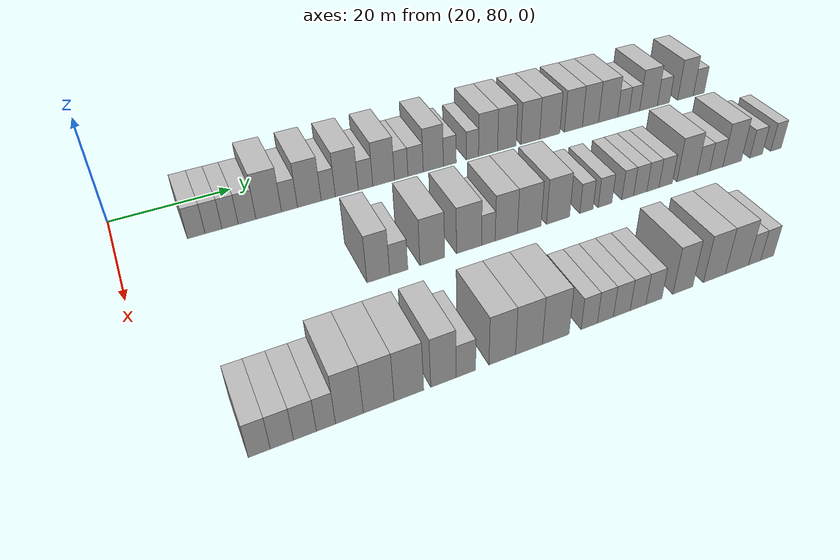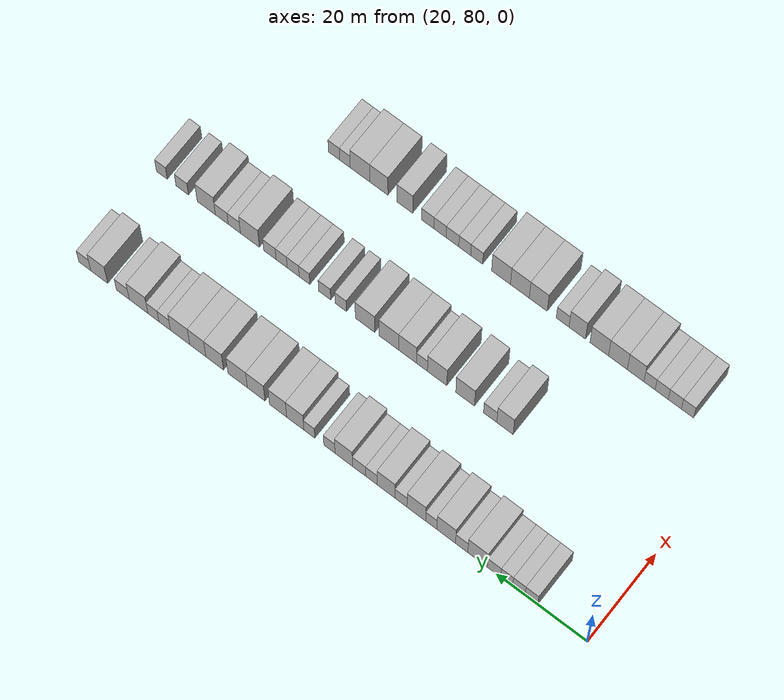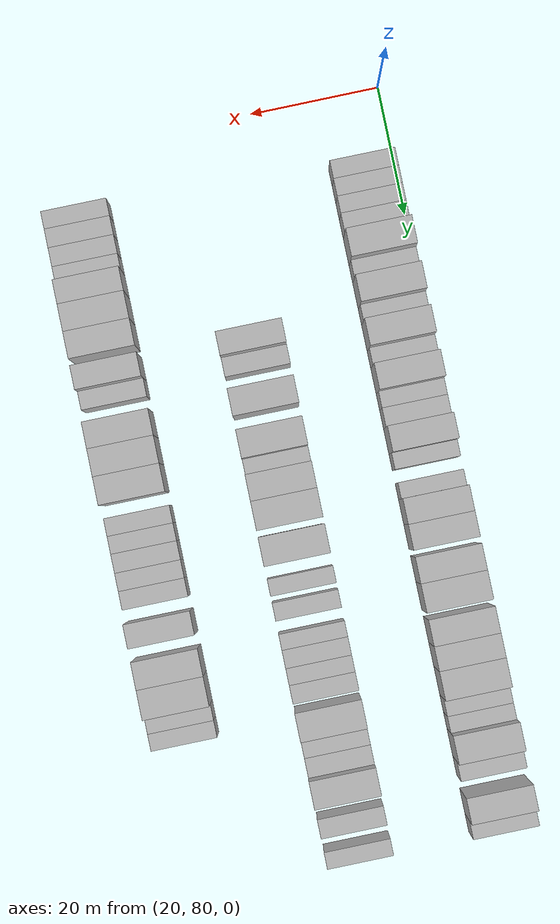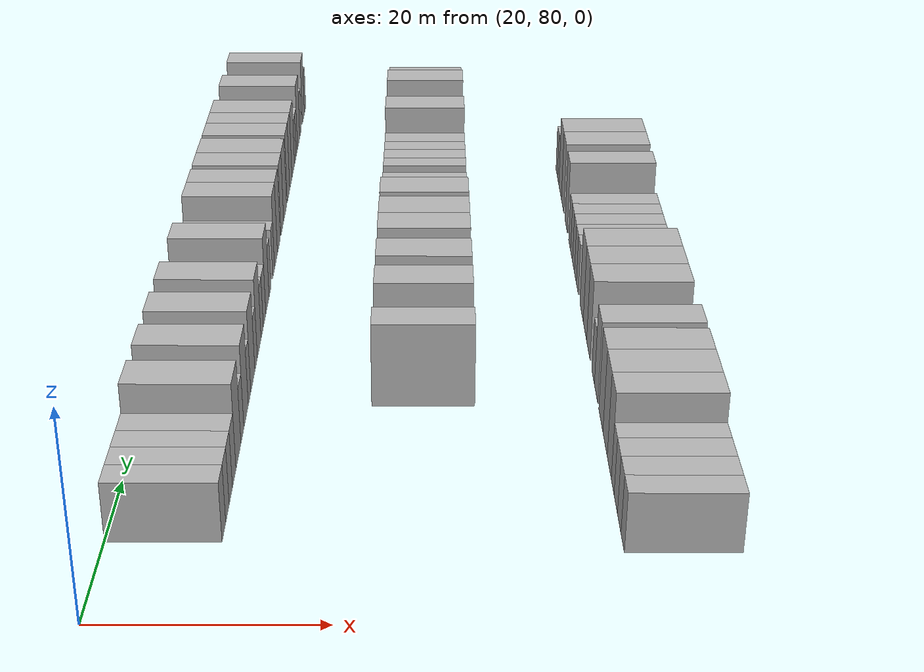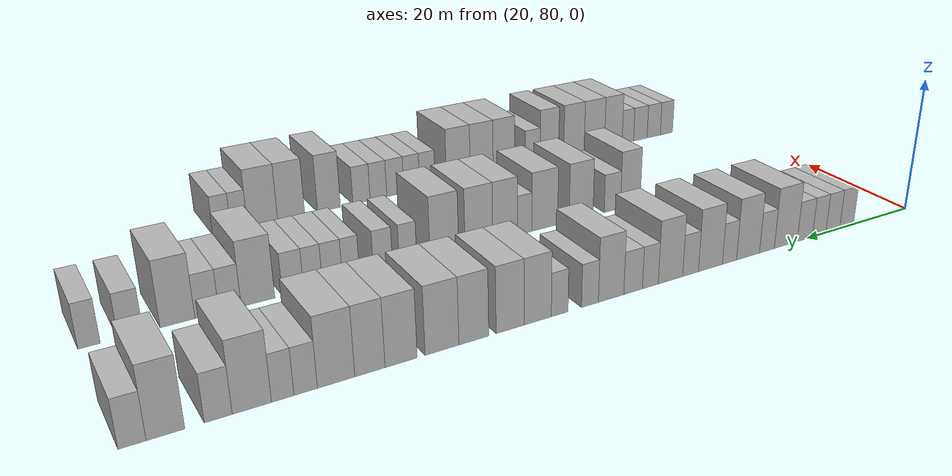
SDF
<sdf version="1.6">
 <world name="default">
  <model name="building_121">
   <static>1</static>
   <pose>25.0000 92.2509 0 0.000000 0.000000 0.000000</pose>
   <link name="link">
    <pose>0 0 3.00 0 0 0</pose>
    <collision name="collision"><geometry><box><size>10.0000 2.7826 6.0000</size></box></geometry></collision>
    <visual name="visual">
     <cast_shadows>0</cast_shadows>
     <geometry><box><size>10.0000 2.7826 6.0000</size></box></geometry>
     <material>
      <script>
       <uri>model://HANNAS_wall/materials/scripts</uri>
       <uri>model://HANNAS_wall/materials/textures</uri>
       <name>vrc/HANNAS_wall</name>
      </script>
     </material>
    </visual>
   </link>
  </model>
  <model name="building_122">
   <static>1</static>
   <pose>25.0000 94.9966 0 0.000000 0.000000 0.000000</pose>
   <link name="link">
    <pose>0 0 3.00 0 0 0</pose>
    <collision name="collision"><geometry><box><size>10.0000 2.7088 6.0000</size></box></geometry></collision>
    <visual name="visual">
     <cast_shadows>0</cast_shadows>
     <geometry><box><size>10.0000 2.7088 6.0000</size></box></geometry>
     <material>
      <script>
       <uri>model://HANNAS_wall/materials/scripts</uri>
       <uri>model://HANNAS_wall/materials/textures</uri>
       <name>vrc/HANNAS_wall</name>
      </script>
     </material>
    </visual>
   </link>
  </model>
  <model name="building_123">
   <static>1</static>
   <pose>25.0000 97.6648 0 0.000000 0.000000 0.000000</pose>
   <link name="link">
    <pose>0 0 3.00 0 0 0</pose>
    <collision name="collision"><geometry><box><size>10.0000 2.6275 6.0000</size></box></geometry></collision>
    <visual name="visual">
     <cast_shadows>0</cast_shadows>
     <geometry><box><size>10.0000 2.6275 6.0000</size></box></geometry>
     <material>
      <script>
       <uri>model://HANNAS_wall/materials/scripts</uri>
       <uri>model://HANNAS_wall/materials/textures</uri>
       <name>vrc/HANNAS_wall</name>
      </script>
     </material>
    </visual>
   </link>
  </model>
  <model name="building_124">
   <static>1</static>
   <pose>25.0000 100.4371 0 0.000000 0.000000 0.000000</pose>
   <link name="link">
    <pose>0 0 3.00 0 0 0</pose>
    <collision name="collision"><geometry><box><size>10.0000 2.9172 6.0000</size></box></geometry></collision>
    <visual name="visual">
     <cast_shadows>0</cast_shadows>
     <geometry><box><size>10.0000 2.9172 6.0000</size></box></geometry>
     <material>
      <script>
       <uri>model://HANNAS_wall/materials/scripts</uri>
       <uri>model://HANNAS_wall/materials/textures</uri>
       <name>vrc/HANNAS_wall</name>
      </script>
     </material>
    </visual>
   </link>
  </model>
  <model name="building_125">
   <static>1</static>
   <pose>25.0000 104.0445 0 0.000000 0.000000 0.000000</pose>
   <link name="link">
    <pose>0 0 4.50 0 0 0</pose>
    <collision name="collision"><geometry><box><size>10.0000 4.2976 9.0000</size></box></geometry></collision>
    <visual name="visual">
     <cast_shadows>0</cast_shadows>
     <geometry><box><size>10.0000 4.2976 9.0000</size></box></geometry>
     <material>
      <script>
       <uri>model://HANNAS_wall/materials/scripts</uri>
       <uri>model://HANNAS_wall/materials/textures</uri>
       <name>vrc/HANNAS_wall</name>
      </script>
     </material>
    </visual>
   </link>
  </model>
  <model name="building_126">
   <static>1</static>
   <pose>25.0000 107.5509 0 0.000000 0.000000 0.000000</pose>
   <link name="link">
    <pose>0 0 3.00 0 0 0</pose>
    <collision name="collision"><geometry><box><size>10.0000 2.7152 6.0000</size></box></geometry></collision>
    <visual name="visual">
     <cast_shadows>0</cast_shadows>
     <geometry><box><size>10.0000 2.7152 6.0000</size></box></geometry>
     <material>
      <script>
       <uri>model://HANNAS_wall/materials/scripts</uri>
       <uri>model://HANNAS_wall/materials/textures</uri>
       <name>vrc/HANNAS_wall</name>
      </script>
     </material>
    </visual>
   </link>
  </model>
  <model name="building_127">
   <static>1</static>
   <pose>25.0000 110.9674 0 0.000000 0.000000 0.000000</pose>
   <link name="link">
    <pose>0 0 4.50 0 0 0</pose>
    <collision name="collision"><geometry><box><size>10.0000 4.1178 9.0000</size></box></geometry></collision>
    <visual name="visual">
     <cast_shadows>0</cast_shadows>
     <geometry><box><size>10.0000 4.1178 9.0000</size></box></geometry>
     <material>
      <script>
       <uri>model://HANNAS_wall/materials/scripts</uri>
       <uri>model://HANNAS_wall/materials/textures</uri>
       <name>vrc/HANNAS_wall</name>
      </script>
     </material>
    </visual>
   </link>
  </model>
  <model name="building_128">
   <static>1</static>
   <pose>25.0000 114.2738 0 0.000000 0.000000 0.000000</pose>
   <link name="link">
    <pose>0 0 3.00 0 0 0</pose>
    <collision name="collision"><geometry><box><size>10.0000 2.4950 6.0000</size></box></geometry></collision>
    <visual name="visual">
     <cast_shadows>0</cast_shadows>
     <geometry><box><size>10.0000 2.4950 6.0000</size></box></geometry>
     <material>
      <script>
       <uri>model://HANNAS_wall/materials/scripts</uri>
       <uri>model://HANNAS_wall/materials/textures</uri>
       <name>vrc/HANNAS_wall</name>
      </script>
     </material>
    </visual>
   </link>
  </model>
  <model name="building_129">
   <static>1</static>
   <pose>25.0000 117.5866 0 0.000000 0.000000 0.000000</pose>
   <link name="link">
    <pose>0 0 4.50 0 0 0</pose>
    <collision name="collision"><geometry><box><size>10.0000 4.1306 9.0000</size></box></geometry></collision>
    <visual name="visual">
     <cast_shadows>0</cast_shadows>
     <geometry><box><size>10.0000 4.1306 9.0000</size></box></geometry>
     <material>
      <script>
       <uri>model://HANNAS_wall/materials/scripts</uri>
       <uri>model://HANNAS_wall/materials/textures</uri>
       <name>vrc/HANNAS_wall</name>
      </script>
     </material>
    </visual>
   </link>
  </model>
  <model name="building_130">
   <static>1</static>
   <pose>25.0000 120.9733 0 0.000000 0.000000 0.000000</pose>
   <link name="link">
    <pose>0 0 3.00 0 0 0</pose>
    <collision name="collision"><geometry><box><size>10.0000 2.6429 6.0000</size></box></geometry></collision>
    <visual name="visual">
     <cast_shadows>0</cast_shadows>
     <geometry><box><size>10.0000 2.6429 6.0000</size></box></geometry>
     <material>
      <script>
       <uri>model://HANNAS_wall/materials/scripts</uri>
       <uri>model://HANNAS_wall/materials/textures</uri>
       <name>vrc/HANNAS_wall</name>
      </script>
     </material>
    </visual>
   </link>
  </model>
  <model name="building_131">
   <static>1</static>
   <pose>25.0000 124.3007 0 0.000000 0.000000 0.000000</pose>
   <link name="link">
    <pose>0 0 4.50 0 0 0</pose>
    <collision name="collision"><geometry><box><size>10.0000 4.0118 9.0000</size></box></geometry></collision>
    <visual name="visual">
     <cast_shadows>0</cast_shadows>
     <geometry><box><size>10.0000 4.0118 9.0000</size></box></geometry>
     <material>
      <script>
       <uri>model://HANNAS_wall/materials/scripts</uri>
       <uri>model://HANNAS_wall/materials/textures</uri>
       <name>vrc/HANNAS_wall</name>
      </script>
     </material>
    </visual>
   </link>
  </model>
  <model name="building_132">
   <static>1</static>
   <pose>25.0000 127.5806 0 0.000000 0.000000 0.000000</pose>
   <link name="link">
    <pose>0 0 3.00 0 0 0</pose>
    <collision name="collision"><geometry><box><size>10.0000 2.5478 6.0000</size></box></geometry></collision>
    <visual name="visual">
     <cast_shadows>0</cast_shadows>
     <geometry><box><size>10.0000 2.5478 6.0000</size></box></geometry>
     <material>
      <script>
       <uri>model://HANNAS_wall/materials/scripts</uri>
       <uri>model://HANNAS_wall/materials/textures</uri>
       <name>vrc/HANNAS_wall</name>
      </script>
     </material>
    </visual>
   </link>
  </model>
  <model name="building_133">
   <static>1</static>
   <pose>25.0000 130.3215 0 0.000000 0.000000 0.000000</pose>
   <link name="link">
    <pose>0 0 3.00 0 0 0</pose>
    <collision name="collision"><geometry><box><size>10.0000 2.9340 6.0000</size></box></geometry></collision>
    <visual name="visual">
     <cast_shadows>0</cast_shadows>
     <geometry><box><size>10.0000 2.9340 6.0000</size></box></geometry>
     <material>
      <script>
       <uri>model://HANNAS_wall/materials/scripts</uri>
       <uri>model://HANNAS_wall/materials/textures</uri>
       <name>vrc/HANNAS_wall</name>
      </script>
     </material>
    </visual>
   </link>
  </model>
  <model name="building_134">
   <static>1</static>
   <pose>25.0000 133.7492 0 0.000000 0.000000 0.000000</pose>
   <link name="link">
    <pose>0 0 4.50 0 0 0</pose>
    <collision name="collision"><geometry><box><size>10.0000 3.9215 9.0000</size></box></geometry></collision>
    <visual name="visual">
     <cast_shadows>0</cast_shadows>
     <geometry><box><size>10.0000 3.9215 9.0000</size></box></geometry>
     <material>
      <script>
       <uri>model://HANNAS_wall/materials/scripts</uri>
       <uri>model://HANNAS_wall/materials/textures</uri>
       <name>vrc/HANNAS_wall</name>
      </script>
     </material>
    </visual>
   </link>
  </model>
  <model name="building_135">
   <static>1</static>
   <pose>25.0000 136.9791 0 0.000000 0.000000 0.000000</pose>
   <link name="link">
    <pose>0 0 3.00 0 0 0</pose>
    <collision name="collision"><geometry><box><size>10.0000 2.5382 6.0000</size></box></geometry></collision>
    <visual name="visual">
     <cast_shadows>0</cast_shadows>
     <geometry><box><size>10.0000 2.5382 6.0000</size></box></geometry>
     <material>
      <script>
       <uri>model://HANNAS_wall/materials/scripts</uri>
       <uri>model://HANNAS_wall/materials/textures</uri>
       <name>vrc/HANNAS_wall</name>
      </script>
     </material>
    </visual>
   </link>
  </model>
  <model name="building_136">
   <static>1</static>
   <pose>25.0000 141.4776 0 0.000000 0.000000 0.000000</pose>
   <link name="link">
    <pose>0 0 3.00 0 0 0</pose>
    <collision name="collision"><geometry><box><size>10.0000 2.4589 6.0000</size></box></geometry></collision>
    <visual name="visual">
     <cast_shadows>0</cast_shadows>
     <geometry><box><size>10.0000 2.4589 6.0000</size></box></geometry>
     <material>
      <script>
       <uri>model://HANNAS_wall/materials/scripts</uri>
       <uri>model://HANNAS_wall/materials/textures</uri>
       <name>vrc/HANNAS_wall</name>
      </script>
     </material>
    </visual>
   </link>
  </model>
  <model name="building_137">
   <static>1</static>
   <pose>25.0000 144.6533 0 0.000000 0.000000 0.000000</pose>
   <link name="link">
    <pose>0 0 4.50 0 0 0</pose>
    <collision name="collision"><geometry><box><size>10.0000 3.8924 9.0000</size></box></geometry></collision>
    <visual name="visual">
     <cast_shadows>0</cast_shadows>
     <geometry><box><size>10.0000 3.8924 9.0000</size></box></geometry>
     <material>
      <script>
       <uri>model://HANNAS_wall/materials/scripts</uri>
       <uri>model://HANNAS_wall/materials/textures</uri>
       <name>vrc/HANNAS_wall</name>
      </script>
     </material>
    </visual>
   </link>
  </model>
  <model name="building_138">
   <static>1</static>
   <pose>25.0000 148.5415 0 0.000000 0.000000 0.000000</pose>
   <link name="link">
    <pose>0 0 4.50 0 0 0</pose>
    <collision name="collision"><geometry><box><size>10.0000 3.8842 9.0000</size></box></geometry></collision>
    <visual name="visual">
     <cast_shadows>0</cast_shadows>
     <geometry><box><size>10.0000 3.8842 9.0000</size></box></geometry>
     <material>
      <script>
       <uri>model://HANNAS_wall/materials/scripts</uri>
       <uri>model://HANNAS_wall/materials/textures</uri>
       <name>vrc/HANNAS_wall</name>
      </script>
     </material>
    </visual>
   </link>
  </model>
  <model name="building_139">
   <static>1</static>
   <pose>25.0000 153.4865 0 0.000000 0.000000 0.000000</pose>
   <link name="link">
    <pose>0 0 4.50 0 0 0</pose>
    <collision name="collision"><geometry><box><size>10.0000 4.0058 9.0000</size></box></geometry></collision>
    <visual name="visual">
     <cast_shadows>0</cast_shadows>
     <geometry><box><size>10.0000 4.0058 9.0000</size></box></geometry>
     <material>
      <script>
       <uri>model://HANNAS_wall/materials/scripts</uri>
       <uri>model://HANNAS_wall/materials/textures</uri>
       <name>vrc/HANNAS_wall</name>
      </script>
     </material>
    </visual>
   </link>
  </model>
  <model name="building_140">
   <static>1</static>
   <pose>25.0000 157.6857 0 0.000000 0.000000 0.000000</pose>
   <link name="link">
    <pose>0 0 4.50 0 0 0</pose>
    <collision name="collision"><geometry><box><size>10.0000 4.3925 9.0000</size></box></geometry></collision>
    <visual name="visual">
     <cast_shadows>0</cast_shadows>
     <geometry><box><size>10.0000 4.3925 9.0000</size></box></geometry>
     <material>
      <script>
       <uri>model://HANNAS_wall/materials/scripts</uri>
       <uri>model://HANNAS_wall/materials/textures</uri>
       <name>vrc/HANNAS_wall</name>
      </script>
     </material>
    </visual>
   </link>
  </model>
  <model name="building_141">
   <static>1</static>
   <pose>25.0000 162.8894 0 0.000000 0.000000 0.000000</pose>
   <link name="link">
    <pose>0 0 4.50 0 0 0</pose>
    <collision name="collision"><geometry><box><size>10.0000 4.0149 9.0000</size></box></geometry></collision>
    <visual name="visual">
     <cast_shadows>0</cast_shadows>
     <geometry><box><size>10.0000 4.0149 9.0000</size></box></geometry>
     <material>
      <script>
       <uri>model://HANNAS_wall/materials/scripts</uri>
       <uri>model://HANNAS_wall/materials/textures</uri>
       <name>vrc/HANNAS_wall</name>
      </script>
     </material>
    </visual>
   </link>
  </model>
  <model name="building_142">
   <static>1</static>
   <pose>25.0000 166.7375 0 0.000000 0.000000 0.000000</pose>
   <link name="link">
    <pose>0 0 4.50 0 0 0</pose>
    <collision name="collision"><geometry><box><size>10.0000 3.6813 9.0000</size></box></geometry></collision>
    <visual name="visual">
     <cast_shadows>0</cast_shadows>
     <geometry><box><size>10.0000 3.6813 9.0000</size></box></geometry>
     <material>
      <script>
       <uri>model://HANNAS_wall/materials/scripts</uri>
       <uri>model://HANNAS_wall/materials/textures</uri>
       <name>vrc/HANNAS_wall</name>
      </script>
     </material>
    </visual>
   </link>
  </model>
  <model name="building_143">
   <static>1</static>
   <pose>25.0000 170.7796 0 0.000000 0.000000 0.000000</pose>
   <link name="link">
    <pose>0 0 4.50 0 0 0</pose>
    <collision name="collision"><geometry><box><size>10.0000 4.4029 9.0000</size></box></geometry></collision>
    <visual name="visual">
     <cast_shadows>0</cast_shadows>
     <geometry><box><size>10.0000 4.4029 9.0000</size></box></geometry>
     <material>
      <script>
       <uri>model://HANNAS_wall/materials/scripts</uri>
       <uri>model://HANNAS_wall/materials/textures</uri>
       <name>vrc/HANNAS_wall</name>
      </script>
     </material>
    </visual>
   </link>
  </model>
  <model name="building_144">
   <static>1</static>
   <pose>25.0000 174.3170 0 0.000000 0.000000 0.000000</pose>
   <link name="link">
    <pose>0 0 3.00 0 0 0</pose>
    <collision name="collision"><geometry><box><size>10.0000 2.6719 6.0000</size></box></geometry></collision>
    <visual name="visual">
     <cast_shadows>0</cast_shadows>
     <geometry><box><size>10.0000 2.6719 6.0000</size></box></geometry>
     <material>
      <script>
       <uri>model://HANNAS_wall/materials/scripts</uri>
       <uri>model://HANNAS_wall/materials/textures</uri>
       <name>vrc/HANNAS_wall</name>
      </script>
     </material>
    </visual>
   </link>
  </model>
  <model name="building_145">
   <static>1</static>
   <pose>25.0000 176.9085 0 0.000000 0.000000 0.000000</pose>
   <link name="link">
    <pose>0 0 3.00 0 0 0</pose>
    <collision name="collision"><geometry><box><size>10.0000 2.5111 6.0000</size></box></geometry></collision>
    <visual name="visual">
     <cast_shadows>0</cast_shadows>
     <geometry><box><size>10.0000 2.5111 6.0000</size></box></geometry>
     <material>
      <script>
       <uri>model://HANNAS_wall/materials/scripts</uri>
       <uri>model://HANNAS_wall/materials/textures</uri>
       <name>vrc/HANNAS_wall</name>
      </script>
     </material>
    </visual>
   </link>
  </model>
  <model name="building_146">
   <static>1</static>
   <pose>25.0000 180.3054 0 0.000000 0.000000 0.000000</pose>
   <link name="link">
    <pose>0 0 4.50 0 0 0</pose>
    <collision name="collision"><geometry><box><size>10.0000 4.2827 9.0000</size></box></geometry></collision>
    <visual name="visual">
     <cast_shadows>0</cast_shadows>
     <geometry><box><size>10.0000 4.2827 9.0000</size></box></geometry>
     <material>
      <script>
       <uri>model://HANNAS_wall/materials/scripts</uri>
       <uri>model://HANNAS_wall/materials/textures</uri>
       <name>vrc/HANNAS_wall</name>
      </script>
     </material>
    </visual>
   </link>
  </model>
  <model name="building_147">
   <static>1</static>
   <pose>25.0000 183.9310 0 0.000000 0.000000 0.000000</pose>
   <link name="link">
    <pose>0 0 3.00 0 0 0</pose>
    <collision name="collision"><geometry><box><size>10.0000 2.9683 6.0000</size></box></geometry></collision>
    <visual name="visual">
     <cast_shadows>0</cast_shadows>
     <geometry><box><size>10.0000 2.9683 6.0000</size></box></geometry>
     <material>
      <script>
       <uri>model://HANNAS_wall/materials/scripts</uri>
       <uri>model://HANNAS_wall/materials/textures</uri>
       <name>vrc/HANNAS_wall</name>
      </script>
     </material>
    </visual>
   </link>
  </model>
  <model name="building_148">
   <static>1</static>
   <pose>25.0000 189.3703 0 0.000000 0.000000 0.000000</pose>
   <link name="link">
    <pose>0 0 4.50 0 0 0</pose>
    <collision name="collision"><geometry><box><size>10.0000 3.9103 9.0000</size></box></geometry></collision>
    <visual name="visual">
     <cast_shadows>0</cast_shadows>
     <geometry><box><size>10.0000 3.9103 9.0000</size></box></geometry>
     <material>
      <script>
       <uri>model://HANNAS_wall/materials/scripts</uri>
       <uri>model://HANNAS_wall/materials/textures</uri>
       <name>vrc/HANNAS_wall</name>
      </script>
     </material>
    </visual>
   </link>
  </model>
  <model name="building_149">
   <static>1</static>
   <pose>25.0000 192.7181 0 0.000000 0.000000 0.000000</pose>
   <link name="link">
    <pose>0 0 3.00 0 0 0</pose>
    <collision name="collision"><geometry><box><size>10.0000 2.7853 6.0000</size></box></geometry></collision>
    <visual name="visual">
     <cast_shadows>0</cast_shadows>
     <geometry><box><size>10.0000 2.7853 6.0000</size></box></geometry>
     <material>
      <script>
       <uri>model://HANNAS_wall/materials/scripts</uri>
       <uri>model://HANNAS_wall/materials/textures</uri>
       <name>vrc/HANNAS_wall</name>
      </script>
     </material>
    </visual>
   </link>
  </model>
  <model name="building_308">
   <static>1</static>
   <pose>47.0000 114.7593 0 0.000000 0.000000 0.000000</pose>
   <link name="link">
    <pose>0 0 4.50 0 0 0</pose>
    <collision name="collision"><geometry><box><size>10.0000 3.6383 9.0000</size></box></geometry></collision>
    <visual name="visual">
     <cast_shadows>0</cast_shadows>
     <geometry><box><size>10.0000 3.6383 9.0000</size></box></geometry>
     <material>
      <script>
       <uri>model://HANNAS_wall/materials/scripts</uri>
       <uri>model://HANNAS_wall/materials/textures</uri>
       <name>vrc/HANNAS_wall</name>
      </script>
     </material>
    </visual>
   </link>
  </model>
  <model name="building_309">
   <static>1</static>
   <pose>47.0000 118.0622 0 0.000000 0.000000 0.000000</pose>
   <link name="link">
    <pose>0 0 3.00 0 0 0</pose>
    <collision name="collision"><geometry><box><size>10.0000 2.9674 6.0000</size></box></geometry></collision>
    <visual name="visual">
     <cast_shadows>0</cast_shadows>
     <geometry><box><size>10.0000 2.9674 6.0000</size></box></geometry>
     <material>
      <script>
       <uri>model://HANNAS_wall/materials/scripts</uri>
       <uri>model://HANNAS_wall/materials/textures</uri>
       <name>vrc/HANNAS_wall</name>
      </script>
     </material>
    </visual>
   </link>
  </model>
  <model name="building_310">
   <static>1</static>
   <pose>47.0000 123.6390 0 0.000000 0.000000 0.000000</pose>
   <link name="link">
    <pose>0 0 4.50 0 0 0</pose>
    <collision name="collision"><geometry><box><size>10.0000 4.1863 9.0000</size></box></geometry></collision>
    <visual name="visual">
     <cast_shadows>0</cast_shadows>
     <geometry><box><size>10.0000 4.1863 9.0000</size></box></geometry>
     <material>
      <script>
       <uri>model://HANNAS_wall/materials/scripts</uri>
       <uri>model://HANNAS_wall/materials/textures</uri>
       <name>vrc/HANNAS_wall</name>
      </script>
     </material>
    </visual>
   </link>
  </model>
  <model name="building_311">
   <static>1</static>
   <pose>47.0000 129.9128 0 0.000000 0.000000 0.000000</pose>
   <link name="link">
    <pose>0 0 4.50 0 0 0</pose>
    <collision name="collision"><geometry><box><size>10.0000 4.3614 9.0000</size></box></geometry></collision>
    <visual name="visual">
     <cast_shadows>0</cast_shadows>
     <geometry><box><size>10.0000 4.3614 9.0000</size></box></geometry>
     <material>
      <script>
       <uri>model://HANNAS_wall/materials/scripts</uri>
       <uri>model://HANNAS_wall/materials/textures</uri>
       <name>vrc/HANNAS_wall</name>
      </script>
     </material>
    </visual>
   </link>
  </model>
  <model name="building_312">
   <static>1</static>
   <pose>47.0000 133.3038 0 0.000000 0.000000 0.000000</pose>
   <link name="link">
    <pose>0 0 3.00 0 0 0</pose>
    <collision name="collision"><geometry><box><size>10.0000 2.4206 6.0000</size></box></geometry></collision>
    <visual name="visual">
     <cast_shadows>0</cast_shadows>
     <geometry><box><size>10.0000 2.4206 6.0000</size></box></geometry>
     <material>
      <script>
       <uri>model://HANNAS_wall/materials/scripts</uri>
       <uri>model://HANNAS_wall/materials/textures</uri>
       <name>vrc/HANNAS_wall</name>
      </script>
     </material>
    </visual>
   </link>
  </model>
  <model name="building_313">
   <static>1</static>
   <pose>47.0000 136.5279 0 0.000000 0.000000 0.000000</pose>
   <link name="link">
    <pose>0 0 4.50 0 0 0</pose>
    <collision name="collision"><geometry><box><size>10.0000 4.0277 9.0000</size></box></geometry></collision>
    <visual name="visual">
     <cast_shadows>0</cast_shadows>
     <geometry><box><size>10.0000 4.0277 9.0000</size></box></geometry>
     <material>
      <script>
       <uri>model://HANNAS_wall/materials/scripts</uri>
       <uri>model://HANNAS_wall/materials/textures</uri>
       <name>vrc/HANNAS_wall</name>
      </script>
     </material>
    </visual>
   </link>
  </model>
  <model name="building_314">
   <static>1</static>
   <pose>47.0000 140.7379 0 0.000000 0.000000 0.000000</pose>
   <link name="link">
    <pose>0 0 4.50 0 0 0</pose>
    <collision name="collision"><geometry><box><size>10.0000 4.3922 9.0000</size></box></geometry></collision>
    <visual name="visual">
     <cast_shadows>0</cast_shadows>
     <geometry><box><size>10.0000 4.3922 9.0000</size></box></geometry>
     <material>
      <script>
       <uri>model://HANNAS_wall/materials/scripts</uri>
       <uri>model://HANNAS_wall/materials/textures</uri>
       <name>vrc/HANNAS_wall</name>
      </script>
     </material>
    </visual>
   </link>
  </model>
  <model name="building_315">
   <static>1</static>
   <pose>47.0000 146.1296 0 0.000000 0.000000 0.000000</pose>
   <link name="link">
    <pose>0 0 4.50 0 0 0</pose>
    <collision name="collision"><geometry><box><size>10.0000 4.3912 9.0000</size></box></geometry></collision>
    <visual name="visual">
     <cast_shadows>0</cast_shadows>
     <geometry><box><size>10.0000 4.3912 9.0000</size></box></geometry>
     <material>
      <script>
       <uri>model://HANNAS_wall/materials/scripts</uri>
       <uri>model://HANNAS_wall/materials/textures</uri>
       <name>vrc/HANNAS_wall</name>
      </script>
     </material>
    </visual>
   </link>
  </model>
  <model name="building_316">
   <static>1</static>
   <pose>47.0000 151.6171 0 0.000000 0.000000 0.000000</pose>
   <link name="link">
    <pose>0 0 3.00 0 0 0</pose>
    <collision name="collision"><geometry><box><size>10.0000 2.5840 6.0000</size></box></geometry></collision>
    <visual name="visual">
     <cast_shadows>0</cast_shadows>
     <geometry><box><size>10.0000 2.5840 6.0000</size></box></geometry>
     <material>
      <script>
       <uri>model://HANNAS_wall/materials/scripts</uri>
       <uri>model://HANNAS_wall/materials/textures</uri>
       <name>vrc/HANNAS_wall</name>
      </script>
     </material>
    </visual>
   </link>
  </model>
  <model name="building_317">
   <static>1</static>
   <pose>47.0000 155.2844 0 0.000000 0.000000 0.000000</pose>
   <link name="link">
    <pose>0 0 3.00 0 0 0</pose>
    <collision name="collision"><geometry><box><size>10.0000 2.7506 6.0000</size></box></geometry></collision>
    <visual name="visual">
     <cast_shadows>0</cast_shadows>
     <geometry><box><size>10.0000 2.7506 6.0000</size></box></geometry>
     <material>
      <script>
       <uri>model://HANNAS_wall/materials/scripts</uri>
       <uri>model://HANNAS_wall/materials/textures</uri>
       <name>vrc/HANNAS_wall</name>
      </script>
     </material>
    </visual>
   </link>
  </model>
  <model name="building_318">
   <static>1</static>
   <pose>47.0000 159.8649 0 0.000000 0.000000 0.000000</pose>
   <link name="link">
    <pose>0 0 3.00 0 0 0</pose>
    <collision name="collision"><geometry><box><size>10.0000 2.4103 6.0000</size></box></geometry></collision>
    <visual name="visual">
     <cast_shadows>0</cast_shadows>
     <geometry><box><size>10.0000 2.4103 6.0000</size></box></geometry>
     <material>
      <script>
       <uri>model://HANNAS_wall/materials/scripts</uri>
       <uri>model://HANNAS_wall/materials/textures</uri>
       <name>vrc/HANNAS_wall</name>
      </script>
     </material>
    </visual>
   </link>
  </model>
  <model name="building_319">
   <static>1</static>
   <pose>47.0000 162.4502 0 0.000000 0.000000 0.000000</pose>
   <link name="link">
    <pose>0 0 3.00 0 0 0</pose>
    <collision name="collision"><geometry><box><size>10.0000 2.7604 6.0000</size></box></geometry></collision>
    <visual name="visual">
     <cast_shadows>0</cast_shadows>
     <geometry><box><size>10.0000 2.7604 6.0000</size></box></geometry>
     <material>
      <script>
       <uri>model://HANNAS_wall/materials/scripts</uri>
       <uri>model://HANNAS_wall/materials/textures</uri>
       <name>vrc/HANNAS_wall</name>
      </script>
     </material>
    </visual>
   </link>
  </model>
  <model name="building_320">
   <static>1</static>
   <pose>47.0000 165.1016 0 0.000000 0.000000 0.000000</pose>
   <link name="link">
    <pose>0 0 3.00 0 0 0</pose>
    <collision name="collision"><geometry><box><size>10.0000 2.5422 6.0000</size></box></geometry></collision>
    <visual name="visual">
     <cast_shadows>0</cast_shadows>
     <geometry><box><size>10.0000 2.5422 6.0000</size></box></geometry>
     <material>
      <script>
       <uri>model://HANNAS_wall/materials/scripts</uri>
       <uri>model://HANNAS_wall/materials/textures</uri>
       <name>vrc/HANNAS_wall</name>
      </script>
     </material>
    </visual>
   </link>
  </model>
  <model name="building_321">
   <static>1</static>
   <pose>47.0000 167.7845 0 0.000000 0.000000 0.000000</pose>
   <link name="link">
    <pose>0 0 3.00 0 0 0</pose>
    <collision name="collision"><geometry><box><size>10.0000 2.8236 6.0000</size></box></geometry></collision>
    <visual name="visual">
     <cast_shadows>0</cast_shadows>
     <geometry><box><size>10.0000 2.8236 6.0000</size></box></geometry>
     <material>
      <script>
       <uri>model://HANNAS_wall/materials/scripts</uri>
       <uri>model://HANNAS_wall/materials/textures</uri>
       <name>vrc/HANNAS_wall</name>
      </script>
     </material>
    </visual>
   </link>
  </model>
  <model name="building_322">
   <static>1</static>
   <pose>47.0000 172.3721 0 0.000000 0.000000 0.000000</pose>
   <link name="link">
    <pose>0 0 4.50 0 0 0</pose>
    <collision name="collision"><geometry><box><size>10.0000 4.3516 9.0000</size></box></geometry></collision>
    <visual name="visual">
     <cast_shadows>0</cast_shadows>
     <geometry><box><size>10.0000 4.3516 9.0000</size></box></geometry>
     <material>
      <script>
       <uri>model://HANNAS_wall/materials/scripts</uri>
       <uri>model://HANNAS_wall/materials/textures</uri>
       <name>vrc/HANNAS_wall</name>
      </script>
     </material>
    </visual>
   </link>
  </model>
  <model name="building_323">
   <static>1</static>
   <pose>47.0000 175.9478 0 0.000000 0.000000 0.000000</pose>
   <link name="link">
    <pose>0 0 3.00 0 0 0</pose>
    <collision name="collision"><geometry><box><size>10.0000 2.7997 6.0000</size></box></geometry></collision>
    <visual name="visual">
     <cast_shadows>0</cast_shadows>
     <geometry><box><size>10.0000 2.7997 6.0000</size></box></geometry>
     <material>
      <script>
       <uri>model://HANNAS_wall/materials/scripts</uri>
       <uri>model://HANNAS_wall/materials/textures</uri>
       <name>vrc/HANNAS_wall</name>
      </script>
     </material>
    </visual>
   </link>
  </model>
  <model name="building_324">
   <static>1</static>
   <pose>47.0000 178.8279 0 0.000000 0.000000 0.000000</pose>
   <link name="link">
    <pose>0 0 3.00 0 0 0</pose>
    <collision name="collision"><geometry><box><size>10.0000 2.9606 6.0000</size></box></geometry></collision>
    <visual name="visual">
     <cast_shadows>0</cast_shadows>
     <geometry><box><size>10.0000 2.9606 6.0000</size></box></geometry>
     <material>
      <script>
       <uri>model://HANNAS_wall/materials/scripts</uri>
       <uri>model://HANNAS_wall/materials/textures</uri>
       <name>vrc/HANNAS_wall</name>
      </script>
     </material>
    </visual>
   </link>
  </model>
  <model name="building_325">
   <static>1</static>
   <pose>47.0000 182.4155 0 0.000000 0.000000 0.000000</pose>
   <link name="link">
    <pose>0 0 4.50 0 0 0</pose>
    <collision name="collision"><geometry><box><size>10.0000 4.2146 9.0000</size></box></geometry></collision>
    <visual name="visual">
     <cast_shadows>0</cast_shadows>
     <geometry><box><size>10.0000 4.2146 9.0000</size></box></geometry>
     <material>
      <script>
       <uri>model://HANNAS_wall/materials/scripts</uri>
       <uri>model://HANNAS_wall/materials/textures</uri>
       <name>vrc/HANNAS_wall</name>
      </script>
     </material>
    </visual>
   </link>
  </model>
  <model name="building_326">
   <static>1</static>
   <pose>47.0000 187.9749 0 0.000000 0.000000 0.000000</pose>
   <link name="link">
    <pose>0 0 3.00 0 0 0</pose>
    <collision name="collision"><geometry><box><size>10.0000 2.9042 6.0000</size></box></geometry></collision>
    <visual name="visual">
     <cast_shadows>0</cast_shadows>
     <geometry><box><size>10.0000 2.9042 6.0000</size></box></geometry>
     <material>
      <script>
       <uri>model://HANNAS_wall/materials/scripts</uri>
       <uri>model://HANNAS_wall/materials/textures</uri>
       <name>vrc/HANNAS_wall</name>
      </script>
     </material>
    </visual>
   </link>
  </model>
  <model name="building_327">
   <static>1</static>
   <pose>47.0000 192.6895 0 0.000000 0.000000 0.000000</pose>
   <link name="link">
    <pose>0 0 3.00 0 0 0</pose>
    <collision name="collision"><geometry><box><size>10.0000 2.5249 6.0000</size></box></geometry></collision>
    <visual name="visual">
     <cast_shadows>0</cast_shadows>
     <geometry><box><size>10.0000 2.5249 6.0000</size></box></geometry>
     <material>
      <script>
       <uri>model://HANNAS_wall/materials/scripts</uri>
       <uri>model://HANNAS_wall/materials/textures</uri>
       <name>vrc/HANNAS_wall</name>
      </script>
     </material>
    </visual>
   </link>
  </model>
  <model name="building_484">
   <static>1</static>
   <pose>69.0000 90.8802 0 0.000000 0.000000 0.000000</pose>
   <link name="link">
    <pose>0 0 3.00 0 0 0</pose>
    <collision name="collision"><geometry><box><size>10.0000 2.6971 6.0000</size></box></geometry></collision>
    <visual name="visual">
     <cast_shadows>0</cast_shadows>
     <geometry><box><size>10.0000 2.6971 6.0000</size></box></geometry>
     <material>
      <script>
       <uri>model://HANNAS_wall/materials/scripts</uri>
       <uri>model://HANNAS_wall/materials/textures</uri>
       <name>vrc/HANNAS_wall</name>
      </script>
     </material>
    </visual>
   </link>
  </model>
  <model name="building_485">
   <static>1</static>
   <pose>69.0000 93.6775 0 0.000000 0.000000 0.000000</pose>
   <link name="link">
    <pose>0 0 3.00 0 0 0</pose>
    <collision name="collision"><geometry><box><size>10.0000 2.8976 6.0000</size></box></geometry></collision>
    <visual name="visual">
     <cast_shadows>0</cast_shadows>
     <geometry><box><size>10.0000 2.8976 6.0000</size></box></geometry>
     <material>
      <script>
       <uri>model://HANNAS_wall/materials/scripts</uri>
       <uri>model://HANNAS_wall/materials/textures</uri>
       <name>vrc/HANNAS_wall</name>
      </script>
     </material>
    </visual>
   </link>
  </model>
  <model name="building_486">
   <static>1</static>
   <pose>69.0000 96.5798 0 0.000000 0.000000 0.000000</pose>
   <link name="link">
    <pose>0 0 3.00 0 0 0</pose>
    <collision name="collision"><geometry><box><size>10.0000 2.9069 6.0000</size></box></geometry></collision>
    <visual name="visual">
     <cast_shadows>0</cast_shadows>
     <geometry><box><size>10.0000 2.9069 6.0000</size></box></geometry>
     <material>
      <script>
       <uri>model://HANNAS_wall/materials/scripts</uri>
       <uri>model://HANNAS_wall/materials/textures</uri>
       <name>vrc/HANNAS_wall</name>
      </script>
     </material>
    </visual>
   </link>
  </model>
  <model name="building_487">
   <static>1</static>
   <pose>69.0000 99.2662 0 0.000000 0.000000 0.000000</pose>
   <link name="link">
    <pose>0 0 3.00 0 0 0</pose>
    <collision name="collision"><geometry><box><size>10.0000 2.4659 6.0000</size></box></geometry></collision>
    <visual name="visual">
     <cast_shadows>0</cast_shadows>
     <geometry><box><size>10.0000 2.4659 6.0000</size></box></geometry>
     <material>
      <script>
       <uri>model://HANNAS_wall/materials/scripts</uri>
       <uri>model://HANNAS_wall/materials/textures</uri>
       <name>vrc/HANNAS_wall</name>
      </script>
     </material>
    </visual>
   </link>
  </model>
  <model name="building_488">
   <static>1</static>
   <pose>69.0000 102.3403 0 0.000000 0.000000 0.000000</pose>
   <link name="link">
    <pose>0 0 4.50 0 0 0</pose>
    <collision name="collision"><geometry><box><size>10.0000 3.6823 9.0000</size></box></geometry></collision>
    <visual name="visual">
     <cast_shadows>0</cast_shadows>
     <geometry><box><size>10.0000 3.6823 9.0000</size></box></geometry>
     <material>
      <script>
       <uri>model://HANNAS_wall/materials/scripts</uri>
       <uri>model://HANNAS_wall/materials/textures</uri>
       <name>vrc/HANNAS_wall</name>
      </script>
     </material>
    </visual>
   </link>
  </model>
  <model name="building_489">
   <static>1</static>
   <pose>69.0000 106.2699 0 0.000000 0.000000 0.000000</pose>
   <link name="link">
    <pose>0 0 4.50 0 0 0</pose>
    <collision name="collision"><geometry><box><size>10.0000 4.1768 9.0000</size></box></geometry></collision>
    <visual name="visual">
     <cast_shadows>0</cast_shadows>
     <geometry><box><size>10.0000 4.1768 9.0000</size></box></geometry>
     <material>
      <script>
       <uri>model://HANNAS_wall/materials/scripts</uri>
       <uri>model://HANNAS_wall/materials/textures</uri>
       <name>vrc/HANNAS_wall</name>
      </script>
     </material>
    </visual>
   </link>
  </model>
  <model name="building_490">
   <static>1</static>
   <pose>69.0000 110.4201 0 0.000000 0.000000 0.000000</pose>
   <link name="link">
    <pose>0 0 4.50 0 0 0</pose>
    <collision name="collision"><geometry><box><size>10.0000 4.1235 9.0000</size></box></geometry></collision>
    <visual name="visual">
     <cast_shadows>0</cast_shadows>
     <geometry><box><size>10.0000 4.1235 9.0000</size></box></geometry>
     <material>
      <script>
       <uri>model://HANNAS_wall/materials/scripts</uri>
       <uri>model://HANNAS_wall/materials/textures</uri>
       <name>vrc/HANNAS_wall</name>
      </script>
     </material>
    </visual>
   </link>
  </model>
  <model name="building_491">
   <static>1</static>
   <pose>69.0000 115.3131 0 0.000000 0.000000 0.000000</pose>
   <link name="link">
    <pose>0 0 4.50 0 0 0</pose>
    <collision name="collision"><geometry><box><size>10.0000 3.6625 9.0000</size></box></geometry></collision>
    <visual name="visual">
     <cast_shadows>0</cast_shadows>
     <geometry><box><size>10.0000 3.6625 9.0000</size></box></geometry>
     <material>
      <script>
       <uri>model://HANNAS_wall/materials/scripts</uri>
       <uri>model://HANNAS_wall/materials/textures</uri>
       <name>vrc/HANNAS_wall</name>
      </script>
     </material>
    </visual>
   </link>
  </model>
  <model name="building_492">
   <static>1</static>
   <pose>69.0000 118.5727 0 0.000000 0.000000 0.000000</pose>
   <link name="link">
    <pose>0 0 3.00 0 0 0</pose>
    <collision name="collision"><geometry><box><size>10.0000 2.8567 6.0000</size></box></geometry></collision>
    <visual name="visual">
     <cast_shadows>0</cast_shadows>
     <geometry><box><size>10.0000 2.8567 6.0000</size></box></geometry>
     <material>
      <script>
       <uri>model://HANNAS_wall/materials/scripts</uri>
       <uri>model://HANNAS_wall/materials/textures</uri>
       <name>vrc/HANNAS_wall</name>
      </script>
     </material>
    </visual>
   </link>
  </model>
  <model name="building_493">
   <static>1</static>
   <pose>69.0000 124.0222 0 0.000000 0.000000 0.000000</pose>
   <link name="link">
    <pose>0 0 4.50 0 0 0</pose>
    <collision name="collision"><geometry><box><size>10.0000 4.0423 9.0000</size></box></geometry></collision>
    <visual name="visual">
     <cast_shadows>0</cast_shadows>
     <geometry><box><size>10.0000 4.0423 9.0000</size></box></geometry>
     <material>
      <script>
       <uri>model://HANNAS_wall/materials/scripts</uri>
       <uri>model://HANNAS_wall/materials/textures</uri>
       <name>vrc/HANNAS_wall</name>
      </script>
     </material>
    </visual>
   </link>
  </model>
  <model name="building_494">
   <static>1</static>
   <pose>69.0000 128.1492 0 0.000000 0.000000 0.000000</pose>
   <link name="link">
    <pose>0 0 4.50 0 0 0</pose>
    <collision name="collision"><geometry><box><size>10.0000 4.2117 9.0000</size></box></geometry></collision>
    <visual name="visual">
     <cast_shadows>0</cast_shadows>
     <geometry><box><size>10.0000 4.2117 9.0000</size></box></geometry>
     <material>
      <script>
       <uri>model://HANNAS_wall/materials/scripts</uri>
       <uri>model://HANNAS_wall/materials/textures</uri>
       <name>vrc/HANNAS_wall</name>
      </script>
     </material>
    </visual>
   </link>
  </model>
  <model name="building_495">
   <static>1</static>
   <pose>69.0000 132.3917 0 0.000000 0.000000 0.000000</pose>
   <link name="link">
    <pose>0 0 4.50 0 0 0</pose>
    <collision name="collision"><geometry><box><size>10.0000 4.2733 9.0000</size></box></geometry></collision>
    <visual name="visual">
     <cast_shadows>0</cast_shadows>
     <geometry><box><size>10.0000 4.2733 9.0000</size></box></geometry>
     <material>
      <script>
       <uri>model://HANNAS_wall/materials/scripts</uri>
       <uri>model://HANNAS_wall/materials/textures</uri>
       <name>vrc/HANNAS_wall</name>
      </script>
     </material>
    </visual>
   </link>
  </model>
  <model name="building_496">
   <static>1</static>
   <pose>69.0000 137.8772 0 0.000000 0.000000 0.000000</pose>
   <link name="link">
    <pose>0 0 3.00 0 0 0</pose>
    <collision name="collision"><geometry><box><size>10.0000 2.6977 6.0000</size></box></geometry></collision>
    <visual name="visual">
     <cast_shadows>0</cast_shadows>
     <geometry><box><size>10.0000 2.6977 6.0000</size></box></geometry>
     <material>
      <script>
       <uri>model://HANNAS_wall/materials/scripts</uri>
       <uri>model://HANNAS_wall/materials/textures</uri>
       <name>vrc/HANNAS_wall</name>
      </script>
     </material>
    </visual>
   </link>
  </model>
  <model name="building_497">
   <static>1</static>
   <pose>69.0000 140.5782 0 0.000000 0.000000 0.000000</pose>
   <link name="link">
    <pose>0 0 3.00 0 0 0</pose>
    <collision name="collision"><geometry><box><size>10.0000 2.7042 6.0000</size></box></geometry></collision>
    <visual name="visual">
     <cast_shadows>0</cast_shadows>
     <geometry><box><size>10.0000 2.7042 6.0000</size></box></geometry>
     <material>
      <script>
       <uri>model://HANNAS_wall/materials/scripts</uri>
       <uri>model://HANNAS_wall/materials/textures</uri>
       <name>vrc/HANNAS_wall</name>
      </script>
     </material>
    </visual>
   </link>
  </model>
  <model name="building_498">
   <static>1</static>
   <pose>69.0000 143.3738 0 0.000000 0.000000 0.000000</pose>
   <link name="link">
    <pose>0 0 3.00 0 0 0</pose>
    <collision name="collision"><geometry><box><size>10.0000 2.8870 6.0000</size></box></geometry></collision>
    <visual name="visual">
     <cast_shadows>0</cast_shadows>
     <geometry><box><size>10.0000 2.8870 6.0000</size></box></geometry>
     <material>
      <script>
       <uri>model://HANNAS_wall/materials/scripts</uri>
       <uri>model://HANNAS_wall/materials/textures</uri>
       <name>vrc/HANNAS_wall</name>
      </script>
     </material>
    </visual>
   </link>
  </model>
  <model name="building_499">
   <static>1</static>
   <pose>69.0000 146.1977 0 0.000000 0.000000 0.000000</pose>
   <link name="link">
    <pose>0 0 3.00 0 0 0</pose>
    <collision name="collision"><geometry><box><size>10.0000 2.7609 6.0000</size></box></geometry></collision>
    <visual name="visual">
     <cast_shadows>0</cast_shadows>
     <geometry><box><size>10.0000 2.7609 6.0000</size></box></geometry>
     <material>
      <script>
       <uri>model://HANNAS_wall/materials/scripts</uri>
       <uri>model://HANNAS_wall/materials/textures</uri>
       <name>vrc/HANNAS_wall</name>
      </script>
     </material>
    </visual>
   </link>
  </model>
  <model name="building_500">
   <static>1</static>
   <pose>69.0000 148.9894 0 0.000000 0.000000 0.000000</pose>
   <link name="link">
    <pose>0 0 3.00 0 0 0</pose>
    <collision name="collision"><geometry><box><size>10.0000 2.8224 6.0000</size></box></geometry></collision>
    <visual name="visual">
     <cast_shadows>0</cast_shadows>
     <geometry><box><size>10.0000 2.8224 6.0000</size></box></geometry>
     <material>
      <script>
       <uri>model://HANNAS_wall/materials/scripts</uri>
       <uri>model://HANNAS_wall/materials/textures</uri>
       <name>vrc/HANNAS_wall</name>
      </script>
     </material>
    </visual>
   </link>
  </model>
  <model name="building_501">
   <static>1</static>
   <pose>69.0000 154.2161 0 0.000000 0.000000 0.000000</pose>
   <link name="link">
    <pose>0 0 4.50 0 0 0</pose>
    <collision name="collision"><geometry><box><size>10.0000 3.6310 9.0000</size></box></geometry></collision>
    <visual name="visual">
     <cast_shadows>0</cast_shadows>
     <geometry><box><size>10.0000 3.6310 9.0000</size></box></geometry>
     <material>
      <script>
       <uri>model://HANNAS_wall/materials/scripts</uri>
       <uri>model://HANNAS_wall/materials/textures</uri>
       <name>vrc/HANNAS_wall</name>
      </script>
     </material>
    </visual>
   </link>
  </model>
  <model name="building_502">
   <static>1</static>
   <pose>69.0000 160.1065 0 0.000000 0.000000 0.000000</pose>
   <link name="link">
    <pose>0 0 4.50 0 0 0</pose>
    <collision name="collision"><geometry><box><size>10.0000 4.1499 9.0000</size></box></geometry></collision>
    <visual name="visual">
     <cast_shadows>0</cast_shadows>
     <geometry><box><size>10.0000 4.1499 9.0000</size></box></geometry>
     <material>
      <script>
       <uri>model://HANNAS_wall/materials/scripts</uri>
       <uri>model://HANNAS_wall/materials/textures</uri>
       <name>vrc/HANNAS_wall</name>
      </script>
     </material>
    </visual>
   </link>
  </model>
  <model name="building_503">
   <static>1</static>
   <pose>69.0000 164.4250 0 0.000000 0.000000 0.000000</pose>
   <link name="link">
    <pose>0 0 4.50 0 0 0</pose>
    <collision name="collision"><geometry><box><size>10.0000 4.4872 9.0000</size></box></geometry></collision>
    <visual name="visual">
     <cast_shadows>0</cast_shadows>
     <geometry><box><size>10.0000 4.4872 9.0000</size></box></geometry>
     <material>
      <script>
       <uri>model://HANNAS_wall/materials/scripts</uri>
       <uri>model://HANNAS_wall/materials/textures</uri>
       <name>vrc/HANNAS_wall</name>
      </script>
     </material>
    </visual>
   </link>
  </model>
  <model name="building_504">
   <static>1</static>
   <pose>69.0000 167.8853 0 0.000000 0.000000 0.000000</pose>
   <link name="link">
    <pose>0 0 3.00 0 0 0</pose>
    <collision name="collision"><geometry><box><size>10.0000 2.4332 6.0000</size></box></geometry></collision>
    <visual name="visual">
     <cast_shadows>0</cast_shadows>
     <geometry><box><size>10.0000 2.4332 6.0000</size></box></geometry>
     <material>
      <script>
       <uri>model://HANNAS_wall/materials/scripts</uri>
       <uri>model://HANNAS_wall/materials/textures</uri>
       <name>vrc/HANNAS_wall</name>
      </script>
     </material>
    </visual>
   </link>
  </model>
  <model name="building_505">
   <static>1</static>
   <pose>69.0000 170.3889 0 0.000000 0.000000 0.000000</pose>
   <link name="link">
    <pose>0 0 3.00 0 0 0</pose>
    <collision name="collision"><geometry><box><size>10.0000 2.5740 6.0000</size></box></geometry></collision>
    <visual name="visual">
     <cast_shadows>0</cast_shadows>
     <geometry><box><size>10.0000 2.5740 6.0000</size></box></geometry>
     <material>
      <script>
       <uri>model://HANNAS_wall/materials/scripts</uri>
       <uri>model://HANNAS_wall/materials/textures</uri>
       <name>vrc/HANNAS_wall</name>
      </script>
     </material>
    </visual>
   </link>
  </model>
 </world>
</sdf>
